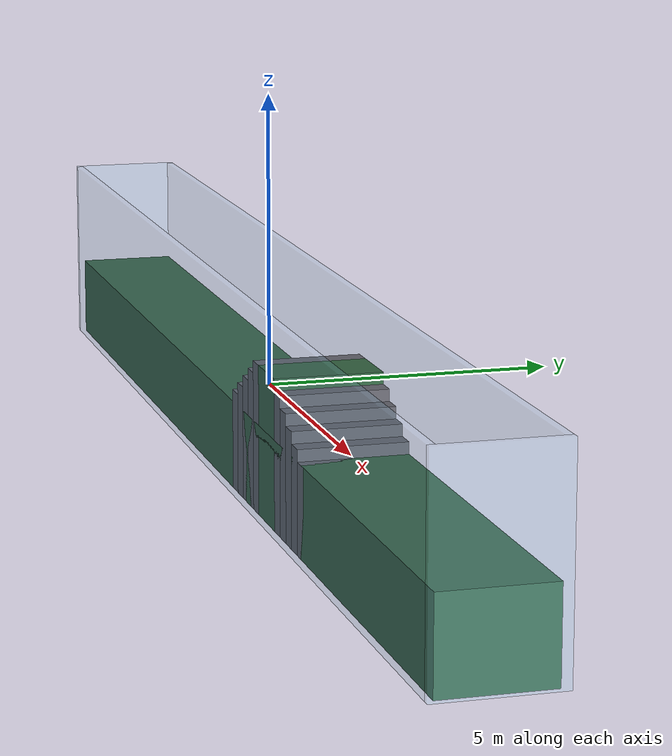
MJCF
<?xml version="1.0" encoding="utf-8"?>
<mujoco model="five 20cm risers up and down">
  <statistic center="2.8 0 0.55" extent="7"/>
  <visual><headlight diffuse="0.7 0.7 0.7" ambient="0.25 0.25 0.25"/><global azimuth="-125" elevation="-22"/></visual>
  <default><default class="course"><geom type="box" friction="0.8 0.8 0.8" priority="2" contype="1" conaffinity="1"/></default>
    <default class="guard"><geom type="box" friction="0.3 0.005 0.0001" contype="1" conaffinity="1" rgba="0.55 0.8 0.95 0.18"/></default></default>
  <worldbody>
    <light pos="2.8 0 9" dir="0 0 -1" directional="true"/>
    <geom name="stair_base" class="course" pos="0 0 -0.750" size="12 0.900 0.750" rgba="0.22 0.42 0.28 1"/>
    <geom name="up1" class="course" pos="1.175 0 -0.650" size="0.175 0.900 0.850" rgba="0.42 0.42 0.46 1"/>
    <geom name="up2" class="course" pos="1.525 0 -0.550" size="0.175 0.900 0.950" rgba="0.42 0.42 0.46 1"/>
    <geom name="up3" class="course" pos="1.875 0 -0.450" size="0.175 0.900 1.050" rgba="0.42 0.42 0.46 1"/>
    <geom name="up4" class="course" pos="2.225 0 -0.350" size="0.175 0.900 1.150" rgba="0.42 0.42 0.46 1"/>
    <geom name="up5" class="course" pos="2.575 0 -0.250" size="0.175 0.900 1.250" rgba="0.42 0.42 0.46 1"/>
    <geom name="top_landing" class="course" pos="3.250 0 -0.250" size="0.500 0.900 1.250" rgba="0.22 0.42 0.28 1"/>
    <geom name="down1" class="course" pos="3.925 0 -0.350" size="0.175 0.900 1.150" rgba="0.42 0.42 0.46 1"/>
    <geom name="down2" class="course" pos="4.275 0 -0.450" size="0.175 0.900 1.050" rgba="0.42 0.42 0.46 1"/>
    <geom name="down3" class="course" pos="4.625 0 -0.550" size="0.175 0.900 0.950" rgba="0.42 0.42 0.46 1"/>
    <geom name="down4" class="course" pos="4.975 0 -0.650" size="0.175 0.900 0.850" rgba="0.42 0.42 0.46 1"/>
    <geom name="down5" class="course" pos="5.325 0 -0.750" size="0.175 0.900 0.750" rgba="0.42 0.42 0.46 1"/>
    <geom name="guard_left" class="guard" pos="0 0.960 0.250" size="12 0.060 1.750"/>
    <geom name="guard_right" class="guard" pos="0 -0.960 0.250" size="12 0.060 1.750"/>
    <geom name="guard_start" class="guard" pos="-12.060 0 0.250" size="0.060 1.020 1.750"/>
    <geom name="guard_finish" class="guard" pos="12.060 0 0.250" size="0.060 1.020 1.750"/>
  </worldbody>
  <contact>
    <pair geom1="RR" geom2="stair_base"/><pair geom1="RL" geom2="stair_base"/><pair geom1="FR" geom2="stair_base"/><pair geom1="FL" geom2="stair_base"/>
    <pair geom1="RR" geom2="up1"/><pair geom1="RL" geom2="up1"/><pair geom1="FR" geom2="up1"/><pair geom1="FL" geom2="up1"/>
    <pair geom1="RR" geom2="up2"/><pair geom1="RL" geom2="up2"/><pair geom1="FR" geom2="up2"/><pair geom1="FL" geom2="up2"/>
    <pair geom1="RR" geom2="up3"/><pair geom1="RL" geom2="up3"/><pair geom1="FR" geom2="up3"/><pair geom1="FL" geom2="up3"/>
    <pair geom1="RR" geom2="up4"/><pair geom1="RL" geom2="up4"/><pair geom1="FR" geom2="up4"/><pair geom1="FL" geom2="up4"/>
    <pair geom1="RR" geom2="up5"/><pair geom1="RL" geom2="up5"/><pair geom1="FR" geom2="up5"/><pair geom1="FL" geom2="up5"/>
    <pair geom1="RR" geom2="top_landing"/><pair geom1="RL" geom2="top_landing"/><pair geom1="FR" geom2="top_landing"/><pair geom1="FL" geom2="top_landing"/>
    <pair geom1="RR" geom2="down1"/><pair geom1="RL" geom2="down1"/><pair geom1="FR" geom2="down1"/><pair geom1="FL" geom2="down1"/>
    <pair geom1="RR" geom2="down2"/><pair geom1="RL" geom2="down2"/><pair geom1="FR" geom2="down2"/><pair geom1="FL" geom2="down2"/>
    <pair geom1="RR" geom2="down3"/><pair geom1="RL" geom2="down3"/><pair geom1="FR" geom2="down3"/><pair geom1="FL" geom2="down3"/>
    <pair geom1="RR" geom2="down4"/><pair geom1="RL" geom2="down4"/><pair geom1="FR" geom2="down4"/><pair geom1="FL" geom2="down4"/>
    <pair geom1="RR" geom2="down5"/><pair geom1="RL" geom2="down5"/><pair geom1="FR" geom2="down5"/><pair geom1="FL" geom2="down5"/>
  </contact>
</mujoco>
